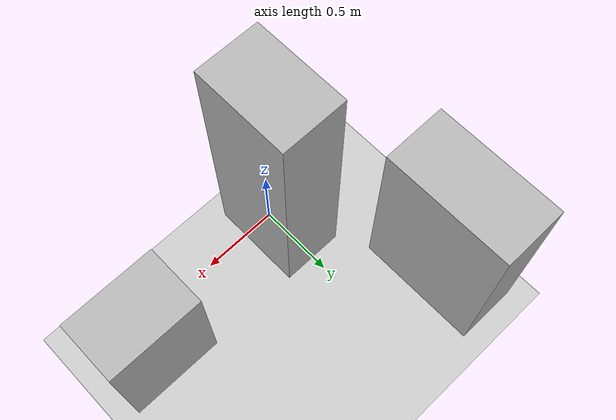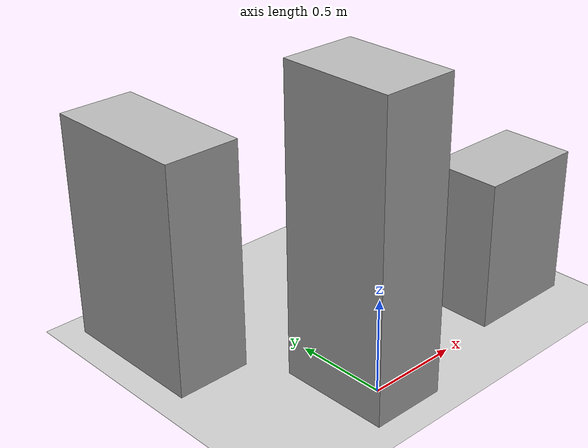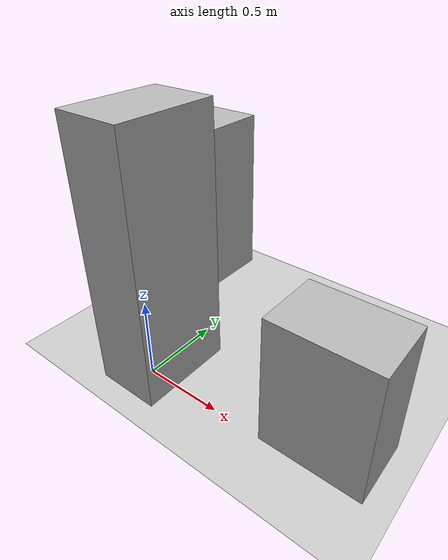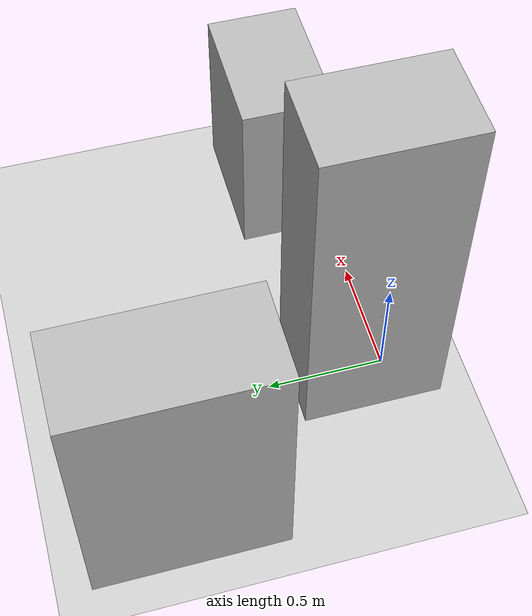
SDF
<?xml version="1.0" ?>
<sdf version="1.4">
  <world name="default">
    <include>
      <uri>model://ground_plane</uri>
    </include>
    <include>
      <uri>model://sun</uri>
    </include>
    <include>
      <uri>model://asphalt_plane</uri>
    </include>

    <physics type='ode'>
      <max_step_size>0.01</max_step_size>
      <real_time_factor>1</real_time_factor>
      <real_time_update_rate>100</real_time_update_rate>
      <gravity>0 0 -9.8</gravity>
    </physics>

    <model name="obstacle1">
      <static>true</static>
      <pose>0.0 0.1 0.8 0 0 0</pose>
      <link name="box">
        <collision name="collision">
          <geometry>
            <box>
              <size>0.4 0.6 1.6</size>
            </box>
          </geometry>
        </collision>
        <visual name="visual">
          <geometry>
            <box>
              <size>0.4 0.6 1.6</size>
            </box>
          </geometry>
        </visual>
      </link>
    </model>

    <model name="obstacle2">
      <static>true</static>
      <pose>1.1 0.2 0.4 0 0 0</pose>
      <link name="box">
        <collision name="collision">
          <geometry>
            <box>
              <size>0.6 0.4 0.8</size>
            </box>
          </geometry>
        </collision>
        <visual name="visual">
          <geometry>
            <box>
              <size>0.6 0.4 0.8</size>
            </box>
          </geometry>
        </visual>
      </link>
    </model>

    <model name="obstacle3">
      <static>true</static>
      <pose>-0.5 1.0 0.6 0 0 0</pose>
      <link name="box">
        <collision name="collision">
          <geometry>
            <box>
              <size>0.4 0.8 1.2</size>
            </box>
          </geometry>
        </collision>
        <visual name="visual">
          <geometry>
            <box>
              <size>0.4 0.8 1.2</size>
            </box>
          </geometry>
        </visual>
      </link>
    </model>

  </world>
</sdf>
